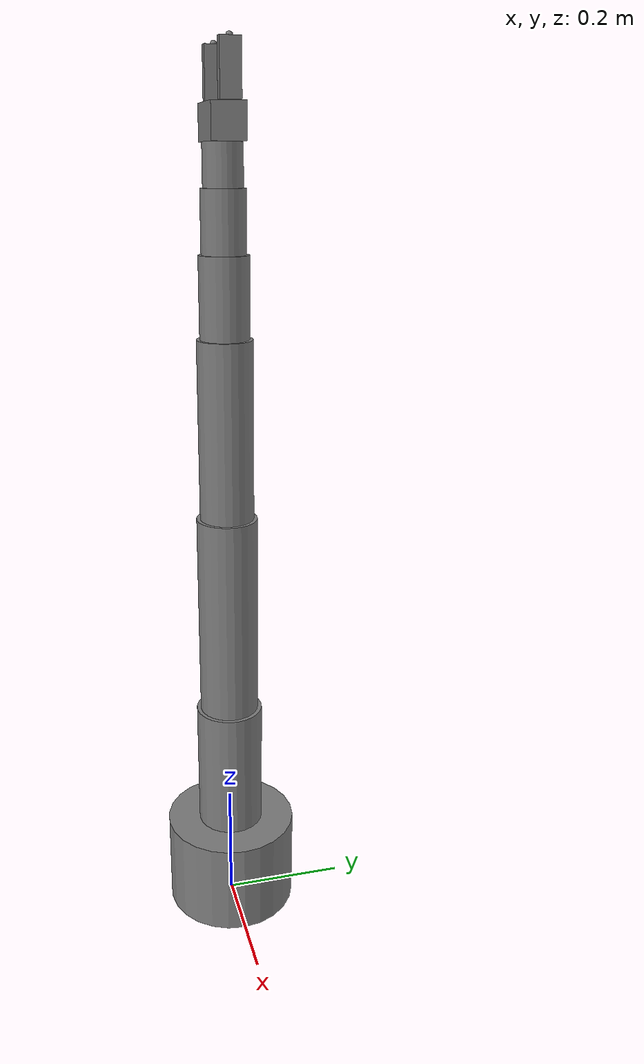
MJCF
<mujoco model="structural_body">
  <compiler angle="radian"/>

  <worldbody>
    <body name="body_0000">
      <inertial pos="0 0 0.08" quat="0.5 0.5 -0.5 0.5" mass="8" diaginertia="0.0484 0.0412667 0.0412667"/>
      <geom size="0.11 0.08" pos="0 0 0.08" type="cylinder"/>
      <site name="robot_base" pos="0 0 0"/>
      <body name="body_0001" pos="0 0 0.16">
        <inertial pos="0 0 0.11" mass="1.88166" diaginertia="0.00901235 0.00901235 0.00284601"/>
        <joint name="axis_0000" pos="0 0 0" axis="0 0 1" range="-2.85 2.85" actuatorfrcrange="-160 160"/>
        <geom size="0.055 0.11" pos="0 0 0.11" type="cylinder"/>
        <body name="body_0002" pos="0 0 0.22">
          <inertial pos="0 0 0.17" mass="2.25197" diaginertia="0.0230128 0.0230128 0.00263768"/>
          <joint name="axis_0001" pos="0 0 0" axis="0 1 0" range="-2.85 2.85" actuatorfrcrange="-160 160"/>
          <geom size="0.0484 0.17" pos="0 0 0.17" type="cylinder"/>
          <body name="body_0003" pos="0 0 0.34">
            <inertial pos="0 0 0.14" mass="1.43617" diaginertia="0.0100343 0.0100343 0.00130266"/>
            <joint name="axis_0002" pos="0 0 0" axis="0 1 0" range="-2.85 2.85" actuatorfrcrange="-160 160"/>
            <geom size="0.042592 0.14" pos="0 0 0.14" type="cylinder"/>
            <body name="body_0004" pos="0 0 0.28">
              <inertial pos="0 0 0.06" mass="0.476645" diaginertia="0.00073937 0.00073937 0.0003348"/>
              <joint name="axis_0003" pos="0 0 0" axis="0 0 1" range="-2.85 2.85" actuatorfrcrange="-160 160"/>
              <geom size="0.037481 0.06" pos="0 0 0.06" type="cylinder"/>
              <body name="body_0005" pos="0 0 0.12">
                <inertial pos="0 0 0.045" mass="0.276835" diaginertia="0.00026216 0.00026216 0.00015058"/>
                <joint name="axis_0004" pos="0 0 0" axis="0 1 0" range="-2.85 2.85" actuatorfrcrange="-160 160"/>
                <geom size="0.032983 0.045" pos="0 0 0.045" type="cylinder"/>
                <body name="body_0006" pos="0 0 0.09">
                  <inertial pos="0 0 0.03" mass="0.25" diaginertia="0.00012765 0.00012765 0.00010531"/>
                  <joint name="axis_0005" pos="0 0 0" axis="0 0 1" range="-2.85 2.85" actuatorfrcrange="-160 160"/>
                  <geom size="0.029025 0.03" pos="0 0 0.03" type="cylinder"/>
                  <body name="body_0007" pos="0 0 0.06">
                    <inertial pos="0 0 0.025" quat="0.5 0.5 0.5 0.5" mass="0.35" diaginertia="0.00030917 0.00030917 0.00014583"/>
                    <geom size="0.045 0.025 0.025" pos="0 0 0.025" type="box"/>
                    <site name="body_0007_grasp_point" pos="0 0 0.0875"/>
                    <site name="body_0007_grasp_center" pos="0 0 0.05"/>
                    <site name="body_0007_wrist" pos="0 0 0"/>
                    <body name="body_0008" pos="0.0505 0 0.05">
                      <inertial pos="0 0 0.0375" mass="0.06" diaginertia="3.263e-05 2.911e-05 5.48e-06"/>
                      <joint name="axis_0007" pos="0 0 0" axis="-1 0 0" type="slide" range="0 0.0425" actuatorfrcrange="-60 60"/>
                      <geom size="0.007 0.015 0.0375" pos="0 0 0.0375" type="box"/>
                      <site name="body_0007_tip" pos="0 0 0.075"/>
                      <site name="body_0007_contact_0" pos="0 0 0.075"/>
                    </body>
                    <body name="body_0009" pos="-0.0505 0 0.05">
                      <inertial pos="0 0 0.0375" mass="0.06" diaginertia="3.263e-05 2.911e-05 5.48e-06"/>
                      <joint name="axis_0008" pos="0 0 0" axis="1 0 0" type="slide" range="0 0.0425" actuatorfrcrange="-60 60"/>
                      <geom size="0.007 0.015 0.0375" pos="0 0 0.0375" type="box"/>
                      <site name="body_0007_contact_1" pos="0 0 0.075"/>
                    </body>
                  </body>
                </body>
              </body>
            </body>
          </body>
        </body>
      </body>
    </body>
  </worldbody>

  <actuator>
    <general name="axis_0000_motor" joint="axis_0000" ctrllimited="true" ctrlrange="-160 160" forcelimited="true" forcerange="-160 160"/>
    <general name="axis_0001_motor" joint="axis_0001" ctrllimited="true" ctrlrange="-160 160" forcelimited="true" forcerange="-160 160"/>
    <general name="axis_0002_motor" joint="axis_0002" ctrllimited="true" ctrlrange="-160 160" forcelimited="true" forcerange="-160 160"/>
    <general name="axis_0003_motor" joint="axis_0003" ctrllimited="true" ctrlrange="-160 160" forcelimited="true" forcerange="-160 160"/>
    <general name="axis_0004_motor" joint="axis_0004" ctrllimited="true" ctrlrange="-160 160" forcelimited="true" forcerange="-160 160"/>
    <general name="axis_0005_motor" joint="axis_0005" ctrllimited="true" ctrlrange="-160 160" forcelimited="true" forcerange="-160 160"/>
    <general name="axis_0007_motor" joint="axis_0007" ctrllimited="true" ctrlrange="-60 60" forcelimited="true" forcerange="-60 60"/>
    <general name="axis_0008_motor" joint="axis_0008" ctrllimited="true" ctrlrange="-60 60" forcelimited="true" forcerange="-60 60"/>
  </actuator>
</mujoco>
